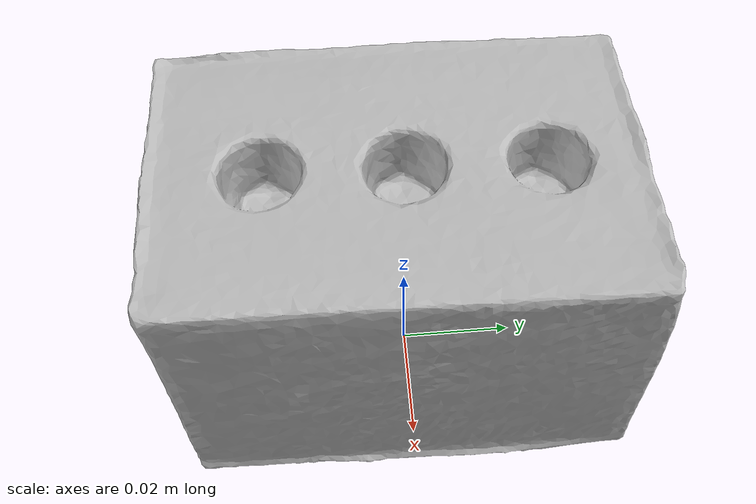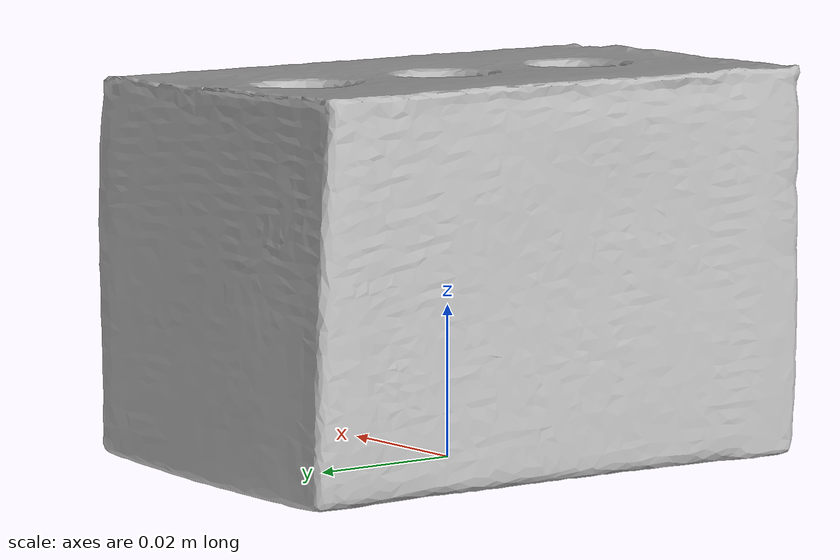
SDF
<?xml version="1.0" ?>
<sdf version='1.8'>
  <model name='ycb_061_foam_brick'>
    <link name='body'>
      <inertial>
        <mass>0.028</mass>
        <pose>-0.000280315759 -0.000198122116 0.0249331505 0 0 0</pose>
        <inertia>
          <ixx>1.89604237917e-05</ixx>
          <ixy>-1.12774528757e-07</ixy>
          <ixz>-2.01442919496e-08</ixz>
          <iyy>1.17667183939e-05</iyy>
          <iyz>1.34278706271e-07</iyz>
          <izz>1.94437397213e-05</izz>
        </inertia>
      </inertial>
      <visual name='ycb_061_foam_brick_visual'>
        <pose>0.018345 -0.017153 0.000289 0 0 0</pose>
        <geometry>
          <mesh>
            <uri>model://ycb_061_foam_brick/meshes/textured.dae</uri>
          </mesh>
        </geometry>
      </visual>
      <collision name='ycb_061_foam_brick_collision'>
        <pose>0.018345 -0.017153 0.000289 0 0 0</pose>
        <geometry>
          <mesh>
            <uri>model://ycb_061_foam_brick/meshes/nontextured.stl</uri>
          </mesh>
        </geometry>
        <max_contacts>10</max_contacts>
        <surface>
          <contact>
            <ode>
              <kp>1e15</kp>
              <kd>1e13</kd>
            </ode>
          </contact>
        </surface>
      </collision>
    </link>
  </model>
</sdf>
